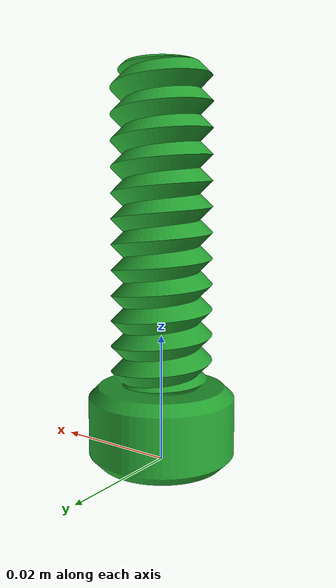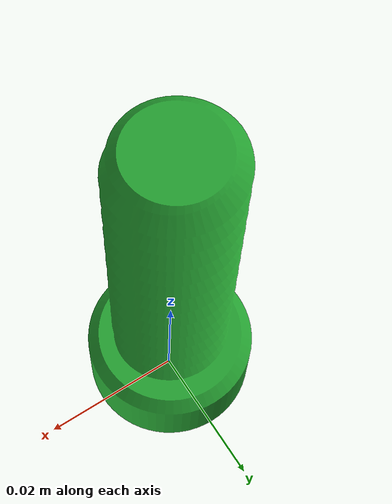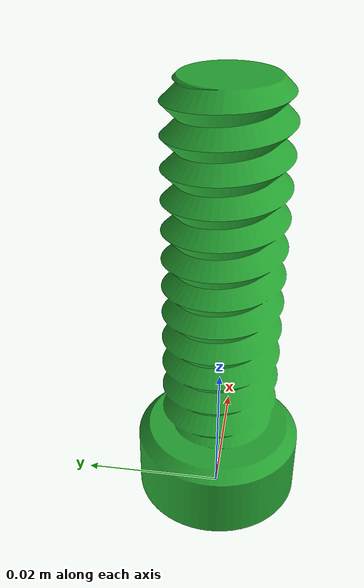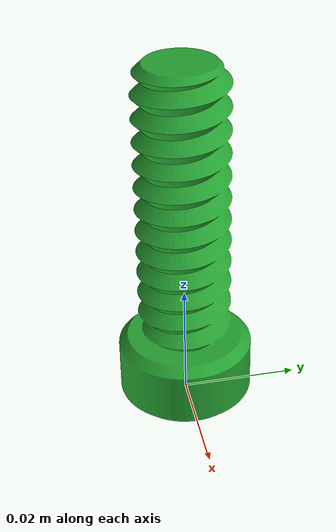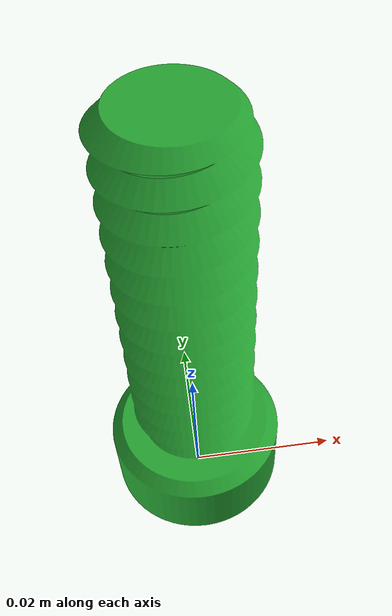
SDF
<?xml version="1.0"?>
<sdf version="1.4">
         <model name="bolt_25x8_socket">
             <static>true</static>
             <link name="link">
                 <pose>0 0 0 0 0 0</pose>
                 <inertial>
                     <pose>-0.0 9.34e-07 0.0261325614 0 0 0 </pose>
                     <mass>1.2e-05</mass>
                     <inertia>
                         <ixx>4.44601957899e-09</ixx>
                         <ixy>9.9e-19</ixy>
                         <ixz>2.99289643e-12</ixz>
                         <iyy>4.44624046876e-09</iyy>
                         <iyz>-1.2000701e-13</iyz>
                         <izz>4.9910311645e-10</izz>
                     </inertia>
                 </inertial>

                 <visual name="visual">
                     <geometry>
                         <mesh>
                             <uri>model://bolt_25x8_socket/meshes/bolt_25x8_socket.stl</uri>
                         </mesh>
                     </geometry>
                     <material>
                         <script>
                             <uri>file://media/materials/scripts/gazebo.material</uri>
                             <name>Gazebo/Green</name>
                         </script>
                     </material>
                 </visual>

                 <collision name="collision">
                     <geometry>
                         <mesh>
                             <uri>model://bolt_25x8_socket/meshes/bolt_25x8_socket.stl</uri>
                         </mesh>
                     </geometry>
                 </collision>
             </link>
         </model>
     </sdf>
